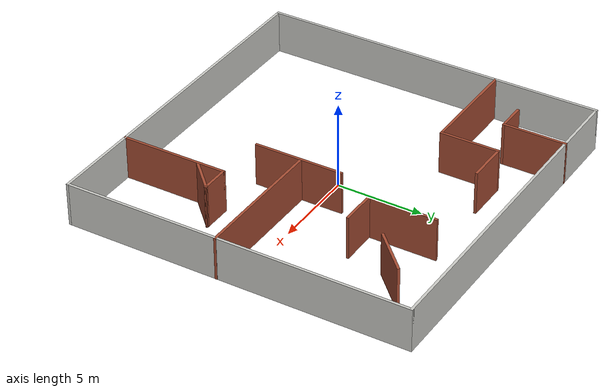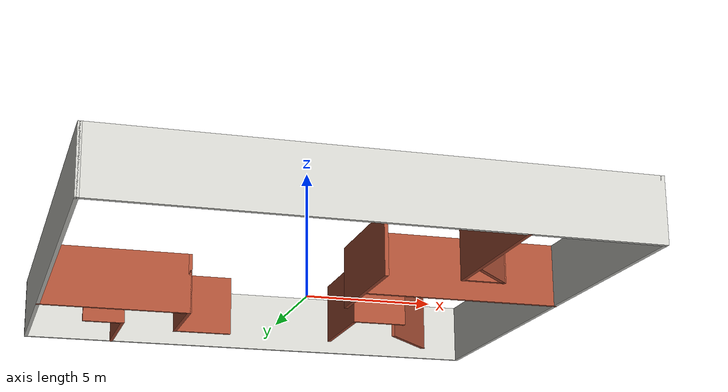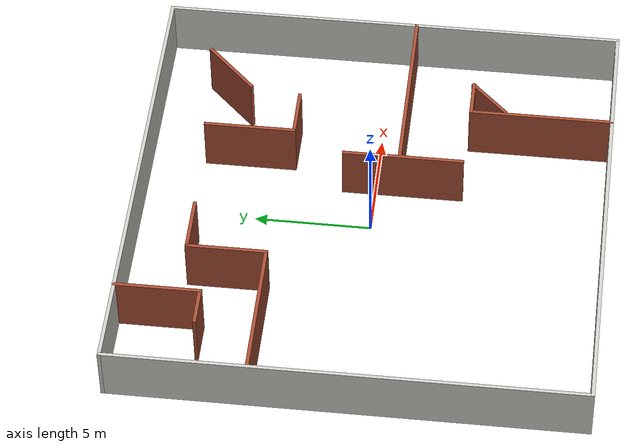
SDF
<?xml version='1.0'?>
<sdf version='1.7'>
  <model name='room3'>
    <pose>0.005 0.005 0 0 -0 0</pose>
    <link name='Wall_0'>
      <collision name='Wall_0_Collision'>
        <geometry>
          <box>
            <size>20.15 0.15 2.5</size>
          </box>
        </geometry>
        <pose>0 0 1.25 0 -0 0</pose>
      </collision>
      <visual name='Wall_0_Visual'>
        <pose>0 0 1.25 0 -0 0</pose>
        <geometry>
          <box>
            <size>20.15 0.15 2.5</size>
          </box>
        </geometry>
        <material>
          <script>
            <uri>file://media/materials/scripts/gazebo.material</uri>
            <name>Gazebo/CeilingTiled</name>
          </script>
          <ambient>1 1 1 1</ambient>
        </material>
        <meta>
          <layer>0</layer>
        </meta>
      </visual>
      <pose>-0.005 9.995 0 0 -0 0</pose>
    </link>
    <link name='Wall_13'>
      <collision name='Wall_13_Collision'>
        <geometry>
          <box>
            <size>6.25 0.15 2.5</size>
          </box>
        </geometry>
        <pose>0 0 1.25 0 -0 0</pose>
      </collision>
      <visual name='Wall_13_Visual'>
        <pose>0 0 1.25 0 -0 0</pose>
        <geometry>
          <box>
            <size>6.25 0.15 2.5</size>
          </box>
        </geometry>
        <material>
          <script>
            <uri>file://media/materials/scripts/gazebo.material</uri>
            <name>Gazebo/Bricks</name>
          </script>
          <ambient>1 1 1 1</ambient>
        </material>
        <meta>
          <layer>0</layer>
        </meta>
      </visual>
      <pose>-6.945 3.965 0 0 -0 0</pose>
    </link>
    <link name='Wall_14'>
      <collision name='Wall_14_Collision'>
        <geometry>
          <box>
            <size>3.5 0.15 2.5</size>
          </box>
        </geometry>
        <pose>0 0 1.25 0 -0 0</pose>
      </collision>
      <visual name='Wall_14_Visual'>
        <pose>0 0 1.25 0 -0 0</pose>
        <geometry>
          <box>
            <size>3.5 0.15 2.5</size>
          </box>
        </geometry>
        <material>
          <script>
            <uri>file://media/materials/scripts/gazebo.material</uri>
            <name>Gazebo/Bricks</name>
          </script>
          <ambient>1 1 1 1</ambient>
        </material>
        <meta>
          <layer>0</layer>
        </meta>
      </visual>
      <pose>-3.895 5.64 0 0 -0 1.5708</pose>
    </link>
    <link name='Wall_19'>
      <collision name='Wall_19_Collision'>
        <geometry>
          <box>
            <size>2.5 0.15 2.5</size>
          </box>
        </geometry>
        <pose>0 0 1.25 0 -0 0</pose>
      </collision>
      <visual name='Wall_19_Visual'>
        <pose>0 0 1.25 0 -0 0</pose>
        <geometry>
          <box>
            <size>2.5 0.15 2.5</size>
          </box>
        </geometry>
        <material>
          <script>
            <uri>file://media/materials/scripts/gazebo.material</uri>
            <name>Gazebo/Bricks</name>
          </script>
          <ambient>1 1 1 1</ambient>
        </material>
        <meta>
          <layer>0</layer>
        </meta>
      </visual>
      <pose>-2.72 7.315 0 0 -0 0</pose>
    </link>
    <link name='Wall_2'>
      <collision name='Wall_2_Collision'>
        <geometry>
          <box>
            <size>20.15 0.15 2.5</size>
          </box>
        </geometry>
        <pose>0 0 1.25 0 -0 0</pose>
      </collision>
      <visual name='Wall_2_Visual'>
        <pose>0 0 1.25 0 -0 0</pose>
        <geometry>
          <box>
            <size>20.15 0.15 2.5</size>
          </box>
        </geometry>
        <material>
          <script>
            <uri>file://media/materials/scripts/gazebo.material</uri>
            <name>Gazebo/CeilingTiled</name>
          </script>
          <ambient>1 1 1 1</ambient>
        </material>
        <meta>
          <layer>0</layer>
        </meta>
      </visual>
      <pose>-10.005 -0.005 0 0 -0 -1.5708</pose>
    </link>
    <link name='Wall_21'>
      <collision name='Wall_21_Collision'>
        <geometry>
          <box>
            <size>4 0.15 2.5</size>
          </box>
        </geometry>
        <pose>0 0 1.25 0 -0 0</pose>
      </collision>
      <visual name='Wall_21_Visual'>
        <pose>0 0 1.25 0 -0 0</pose>
        <geometry>
          <box>
            <size>4 0.15 2.5</size>
          </box>
        </geometry>
        <material>
          <script>
            <uri>file://media/materials/scripts/gazebo.material</uri>
            <name>Gazebo/Bricks</name>
          </script>
          <ambient>1 1 1 1</ambient>
        </material>
        <meta>
          <layer>0</layer>
        </meta>
      </visual>
      <pose>3.085 5.58 0 0 -0 -1.5708</pose>
    </link>
    <link name='Wall_22'>
      <collision name='Wall_22_Collision'>
        <geometry>
          <box>
            <size>2.25 0.15 2.5</size>
          </box>
        </geometry>
        <pose>0 0 1.25 0 -0 0</pose>
      </collision>
      <visual name='Wall_22_Visual'>
        <pose>0 0 1.25 0 -0 0</pose>
        <geometry>
          <box>
            <size>2.25 0.15 2.5</size>
          </box>
        </geometry>
        <material>
          <script>
            <uri>file://media/materials/scripts/gazebo.material</uri>
            <name>Gazebo/Bricks</name>
          </script>
          <ambient>1 1 1 1</ambient>
        </material>
        <meta>
          <layer>0</layer>
        </meta>
      </visual>
      <pose>4.135 3.655 0 0 -0 0</pose>
    </link>
    <link name='Wall_24'>
      <collision name='Wall_24_Collision'>
        <geometry>
          <box>
            <size>3 0.15 2.5</size>
          </box>
        </geometry>
        <pose>0 0 1.25 0 -0 0</pose>
      </collision>
      <visual name='Wall_24_Visual'>
        <pose>0 0 1.25 0 -0 0</pose>
        <geometry>
          <box>
            <size>3 0.15 2.5</size>
          </box>
        </geometry>
        <material>
          <script>
            <uri>file://media/materials/scripts/gazebo.material</uri>
            <name>Gazebo/Bricks</name>
          </script>
          <ambient>1 1 1 1</ambient>
        </material>
        <meta>
          <layer>0</layer>
        </meta>
      </visual>
      <pose>6.53737 6.85737 0 0 -0 -2.35619</pose>
    </link>
    <link name='Wall_28'>
      <collision name='Wall_28_Collision'>
        <geometry>
          <box>
            <size>6.25 0.15 2.5</size>
          </box>
        </geometry>
        <pose>0 0 1.25 0 -0 0</pose>
      </collision>
      <visual name='Wall_28_Visual'>
        <pose>0 0 1.25 0 -0 0</pose>
        <geometry>
          <box>
            <size>6.25 0.15 2.5</size>
          </box>
        </geometry>
        <material>
          <script>
            <uri>file://media/materials/scripts/gazebo.material</uri>
            <name>Gazebo/Bricks</name>
          </script>
          <ambient>1 1 1 1</ambient>
        </material>
        <meta>
          <layer>0</layer>
        </meta>
      </visual>
      <pose>4.995 -6.925 0 0 -0 1.5708</pose>
    </link>
    <link name='Wall_29'>
      <collision name='Wall_29_Collision'>
        <geometry>
          <box>
            <size>1.75 0.15 2.5</size>
          </box>
        </geometry>
        <pose>0 0 1.25 0 -0 0</pose>
      </collision>
      <visual name='Wall_29_Visual'>
        <pose>0 0 1.25 0 -0 0</pose>
        <geometry>
          <box>
            <size>1.75 0.15 2.5</size>
          </box>
        </geometry>
        <material>
          <script>
            <uri>file://media/materials/scripts/gazebo.material</uri>
            <name>Gazebo/Bricks</name>
          </script>
          <ambient>1 1 1 1</ambient>
        </material>
        <meta>
          <layer>0</layer>
        </meta>
      </visual>
      <pose>5.795 -3.875 0 0 -0 0</pose>
    </link>
    <link name='Wall_3'>
      <collision name='Wall_3_Collision'>
        <geometry>
          <box>
            <size>20.15 0.15 2.5</size>
          </box>
        </geometry>
        <pose>0 0 1.25 0 -0 0</pose>
      </collision>
      <visual name='Wall_3_Visual'>
        <pose>0 0 1.25 0 -0 0</pose>
        <geometry>
          <box>
            <size>20.15 0.15 2.5</size>
          </box>
        </geometry>
        <material>
          <script>
            <uri>file://media/materials/scripts/gazebo.material</uri>
            <name>Gazebo/CeilingTiled</name>
          </script>
          <ambient>1 1 1 1</ambient>
        </material>
        <meta>
          <layer>0</layer>
        </meta>
      </visual>
      <pose>-0.005 -10.005 0 0 -0 0</pose>
    </link>
    <link name='Wall_30'>
      <collision name='Wall_30_Collision'>
        <geometry>
          <box>
            <size>2.25 0.15 2.5</size>
          </box>
        </geometry>
        <pose>0 0 1.25 0 -0 0</pose>
      </collision>
      <visual name='Wall_30_Visual'>
        <pose>0 0 1.25 0 -0 0</pose>
        <geometry>
          <box>
            <size>2.25 0.15 2.5</size>
          </box>
        </geometry>
        <material>
          <script>
            <uri>file://media/materials/scripts/gazebo.material</uri>
            <name>Gazebo/Bricks</name>
          </script>
          <ambient>1 1 1 1</ambient>
        </material>
        <meta>
          <layer>0</layer>
        </meta>
      </visual>
      <pose>5.85254 -4.61746 0 0 -0 -2.35619</pose>
    </link>
    <link name='Wall_32'>
      <collision name='Wall_32_Collision'>
        <geometry>
          <box>
            <size>8 0.15 2.5</size>
          </box>
        </geometry>
        <pose>0 0 1.25 0 -0 0</pose>
      </collision>
      <visual name='Wall_32_Visual'>
        <pose>0 0 1.25 0 -0 0</pose>
        <geometry>
          <box>
            <size>8 0.15 2.5</size>
          </box>
        </geometry>
        <material>
          <script>
            <uri>file://media/materials/scripts/gazebo.material</uri>
            <name>Gazebo/Bricks</name>
          </script>
          <ambient>1 1 1 1</ambient>
        </material>
        <meta>
          <layer>0</layer>
        </meta>
      </visual>
      <pose>6.08 -1.035 0 0 -0 0</pose>
    </link>
    <link name='Wall_35'>
      <collision name='Wall_35_Collision'>
        <geometry>
          <box>
            <size>5.25 0.15 2.5</size>
          </box>
        </geometry>
        <pose>0 0 1.25 0 -0 0</pose>
      </collision>
      <visual name='Wall_35_Visual'>
        <pose>0 0 1.25 0 -0 0</pose>
        <geometry>
          <box>
            <size>5.25 0.15 2.5</size>
          </box>
        </geometry>
        <material>
          <script>
            <uri>file://media/materials/scripts/gazebo.material</uri>
            <name>Gazebo/Bricks</name>
          </script>
          <ambient>1 1 1 1</ambient>
        </material>
        <meta>
          <layer>0</layer>
        </meta>
      </visual>
      <pose>2.025 -1.185 0 0 -0 -1.5708</pose>
    </link>
    <link name='Wall_5'>
      <collision name='Wall_5_Collision'>
        <geometry>
          <box>
            <size>20.15 0.15 2.5</size>
          </box>
        </geometry>
        <pose>0 0 1.25 0 -0 0</pose>
      </collision>
      <visual name='Wall_5_Visual'>
        <pose>0 0 1.25 0 -0 0</pose>
        <geometry>
          <box>
            <size>20.15 0.15 2.5</size>
          </box>
        </geometry>
        <material>
          <script>
            <uri>file://media/materials/scripts/gazebo.material</uri>
            <name>Gazebo/CeilingTiled</name>
          </script>
          <ambient>1 1 1 1</ambient>
        </material>
        <meta>
          <layer>0</layer>
        </meta>
      </visual>
      <pose>9.995 -0.005 0 0 -0 -1.5708</pose>
    </link>
    <link name='Wall_7'>
      <collision name='Wall_7_Collision'>
        <geometry>
          <box>
            <size>3.75 0.15 2.5</size>
          </box>
        </geometry>
        <pose>0 0 1.25 0 -0 0</pose>
      </collision>
      <visual name='Wall_7_Visual'>
        <pose>0 0 1.25 0 -0 0</pose>
        <geometry>
          <box>
            <size>3.75 0.15 2.5</size>
          </box>
        </geometry>
        <material>
          <script>
            <uri>file://media/materials/scripts/gazebo.material</uri>
            <name>Gazebo/Bricks</name>
          </script>
          <ambient>1 1 1 1</ambient>
        </material>
        <meta>
          <layer>0</layer>
        </meta>
      </visual>
      <pose>-6.285 8.205 0 0 -0 -1.5708</pose>
    </link>
    <link name='Wall_8'>
      <collision name='Wall_8_Collision'>
        <geometry>
          <box>
            <size>1.75 0.15 2.5</size>
          </box>
        </geometry>
        <pose>0 0 1.25 0 -0 0</pose>
      </collision>
      <visual name='Wall_8_Visual'>
        <pose>0 0 1.25 0 -0 0</pose>
        <geometry>
          <box>
            <size>1.75 0.15 2.5</size>
          </box>
        </geometry>
        <material>
          <script>
            <uri>file://media/materials/scripts/gazebo.material</uri>
            <name>Gazebo/Bricks</name>
          </script>
          <ambient>1 1 1 1</ambient>
        </material>
        <meta>
          <layer>0</layer>
        </meta>
      </visual>
      <pose>-7.085 6.405 0 0 -0 3.14159</pose>
    </link>
    <static>1</static>
  </model>
</sdf>
